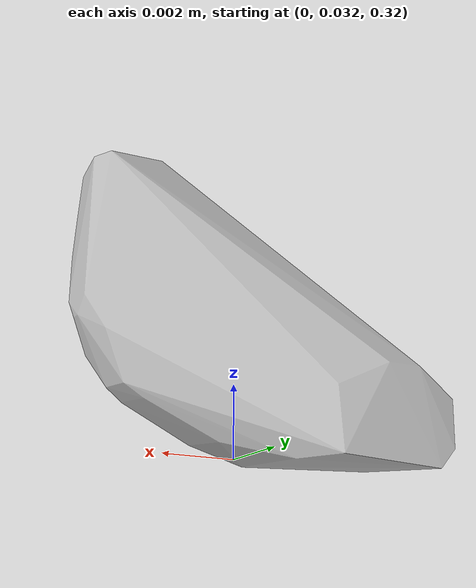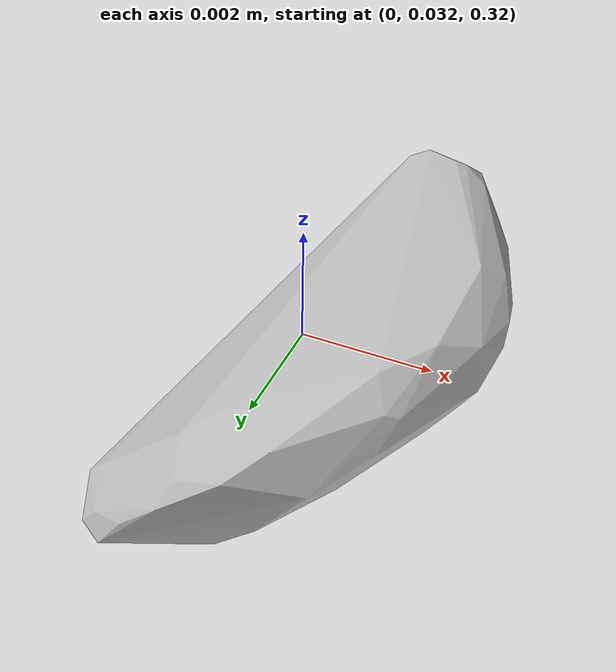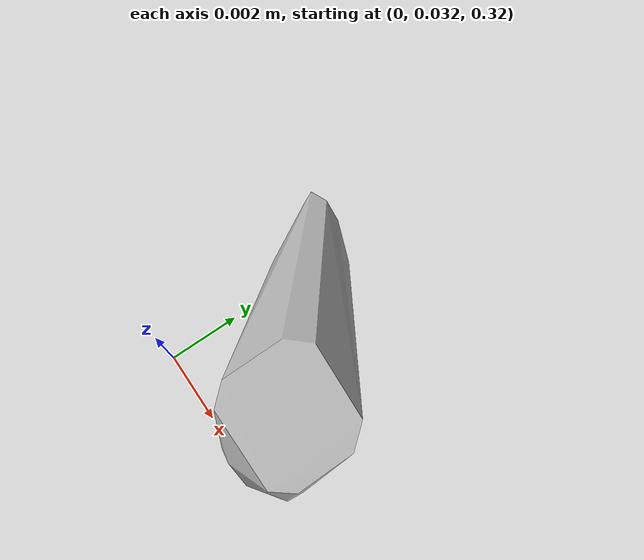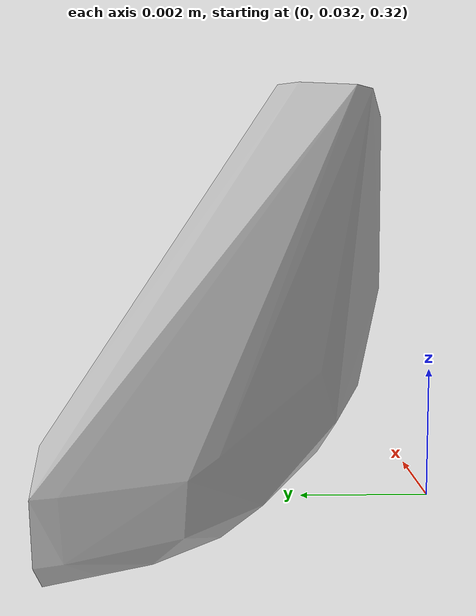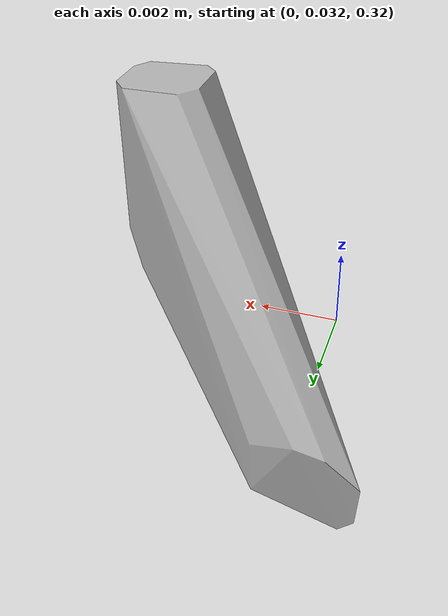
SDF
<?xml version="1.0"?>
<sdf version="1.7">
  <model name="vascular_partexport043">
    <link name="vascular_partexport043_body">
      <visual name="vascular_partexport043_visual">
        <geometry>
          <mesh>
            <uri>vascular_partexport043.obj</uri>
          </mesh>
        </geometry>
      </visual>
      <collision name="vascular_partexport043_collision">
        <geometry>
          <mesh>
            <uri>vascular_partexport043.obj</uri>
          </mesh>
        </geometry>
      </collision>
    </link>
    <frame name="vascular_partexport043_center">
      <pose relative_to="vascular_partexport043_body">0 0 0 0 0 0</pose>
    </frame>
  </model>
</sdf>
